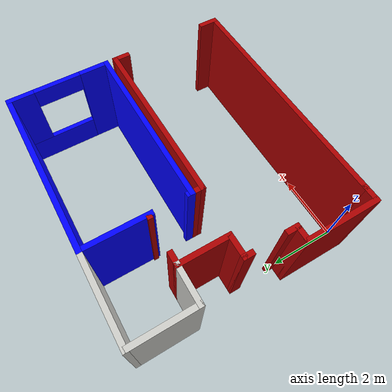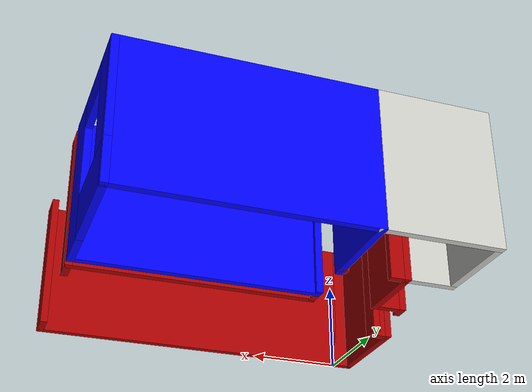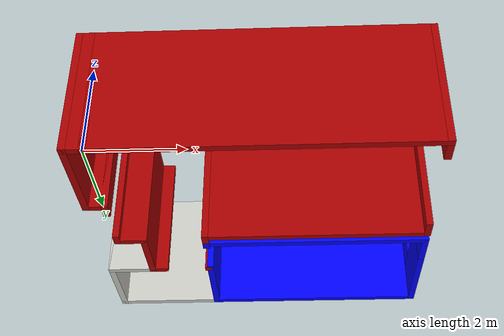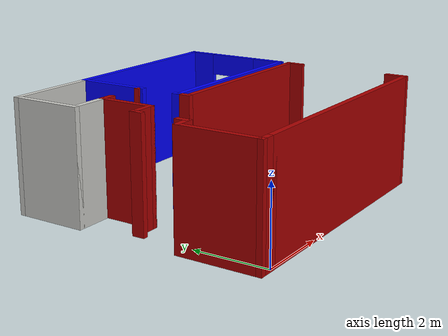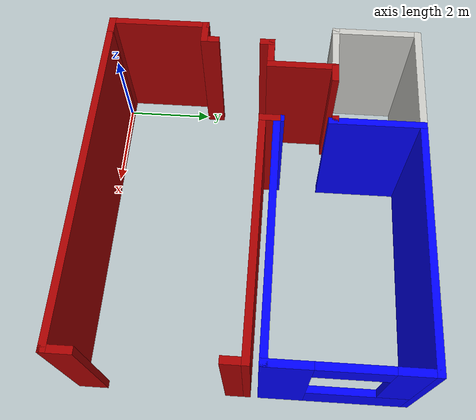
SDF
<?xml version='1.0'?>
<sdf version='1.6'>
  <model name='myhouse'>
    <pose frame=''>3.3 3.4 0 0 -0 0</pose>
    <link name='Wall_0'>
      <collision name='Wall_0_Collision'>
        <geometry>
          <box>
            <size>7.15 0.15 3</size>
          </box>
        </geometry>
        <pose frame=''>0 0 1.5 0 -0 0</pose>
      </collision>
      <visual name='Wall_0_Visual'>
        <pose frame=''>0 0 1.5 0 -0 0</pose>
        <geometry>
          <box>
            <size>7.15 0.15 3</size>
          </box>
        </geometry>
        <material>
          <script>
            <uri>file://media/materials/scripts/gazebo.material</uri>
            <name>Gazebo/Grey</name>
          </script>
          <ambient>0.666667 0 0 1</ambient>
        </material>
      </visual>
      <pose frame=''>0.2 -3.4 0 0 -0 0</pose>
    </link>
    <link name='Wall_10'>
      <pose frame=''>3.7 1.9 0 0 -0 1.5708</pose>
      <visual name='Wall_10_Visual_0'>
        <pose frame=''>-1.10421 0 1.5 0 -0 0</pose>
        <geometry>
          <box>
            <size>0.94158 0.15 3</size>
          </box>
        </geometry>
        <material>
          <script>
            <uri>file://media/materials/scripts/gazebo.material</uri>
            <name>Gazebo/Grey</name>
          </script>
          <ambient>0 0 1 1</ambient>
        </material>
      </visual>
      <collision name='Wall_10_Collision_0'>
        <geometry>
          <box>
            <size>0.94158 0.15 3</size>
          </box>
        </geometry>
        <pose frame=''>-1.10421 0 1.5 0 -0 0</pose>
      </collision>
      <visual name='Wall_10_Visual_1'>
        <pose frame=''>0.47079 0 0.45 0 -0 0</pose>
        <geometry>
          <box>
            <size>2.20842 0.15 0.9</size>
          </box>
        </geometry>
        <material>
          <script>
            <uri>file://media/materials/scripts/gazebo.material</uri>
            <name>Gazebo/Grey</name>
          </script>
          <ambient>0 0 1 1</ambient>
        </material>
      </visual>
      <collision name='Wall_10_Collision_1'>
        <geometry>
          <box>
            <size>2.20842 0.15 0.9</size>
          </box>
        </geometry>
        <pose frame=''>0.47079 0 0.45 0 -0 0</pose>
      </collision>
      <visual name='Wall_10_Visual_2'>
        <pose frame=''>1.17079 0 1.95 0 -0 0</pose>
        <geometry>
          <box>
            <size>0.80842 0.15 2.1</size>
          </box>
        </geometry>
        <material>
          <script>
            <uri>file://media/materials/scripts/gazebo.material</uri>
            <name>Gazebo/Grey</name>
          </script>
          <ambient>0 0 1 1</ambient>
        </material>
      </visual>
      <collision name='Wall_10_Collision_2'>
        <geometry>
          <box>
            <size>0.80842 0.15 2.1</size>
          </box>
        </geometry>
        <pose frame=''>1.17079 0 1.95 0 -0 0</pose>
      </collision>
      <visual name='Wall_10_Visual_3'>
        <pose frame=''>0.06658 0 2.7 0 -0 0</pose>
        <geometry>
          <box>
            <size>1.4 0.15 0.6</size>
          </box>
        </geometry>
        <material>
          <script>
            <uri>file://media/materials/scripts/gazebo.material</uri>
            <name>Gazebo/Grey</name>
          </script>
          <ambient>0 0 1 1</ambient>
        </material>
      </visual>
      <collision name='Wall_10_Collision_3'>
        <geometry>
          <box>
            <size>1.4 0.15 0.6</size>
          </box>
        </geometry>
        <pose frame=''>0.06658 0 2.7 0 -0 0</pose>
      </collision>
    </link>
    <link name='Wall_11'>
      <collision name='Wall_11_Collision'>
        <geometry>
          <box>
            <size>5.15 0.15 3</size>
          </box>
        </geometry>
        <pose frame=''>0 0 1.5 0 -0 0</pose>
      </collision>
      <visual name='Wall_11_Visual'>
        <pose frame=''>0 0 1.5 0 -0 0</pose>
        <geometry>
          <box>
            <size>5.15 0.15 3</size>
          </box>
        </geometry>
        <material>
          <script>
            <uri>file://media/materials/scripts/gazebo.material</uri>
            <name>Gazebo/Grey</name>
          </script>
          <ambient>0 0 1 1</ambient>
        </material>
      </visual>
      <pose frame=''>1.2 3.4 0 0 -0 3.14159</pose>
    </link>
    <link name='Wall_12'>
      <pose frame=''>-1.3 1.9 0 0 0 -1.5708</pose>
      <visual name='Wall_12_Visual_0'>
        <pose frame=''>-0.564587 0 1.5 0 -0 0</pose>
        <geometry>
          <box>
            <size>2.02082 0.15 3</size>
          </box>
        </geometry>
        <material>
          <script>
            <uri>file://media/materials/scripts/gazebo.material</uri>
            <name>Gazebo/Grey</name>
          </script>
          <ambient>0 0 1 1</ambient>
        </material>
      </visual>
      <collision name='Wall_12_Collision_0'>
        <geometry>
          <box>
            <size>2.02082 0.15 3</size>
          </box>
        </geometry>
        <pose frame=''>-0.564587 0 1.5 0 -0 0</pose>
      </collision>
      <visual name='Wall_12_Visual_1'>
        <pose frame=''>1.46041 0 1.5 0 -0 0</pose>
        <geometry>
          <box>
            <size>0.229175 0.15 3</size>
          </box>
        </geometry>
        <material>
          <script>
            <uri>file://media/materials/scripts/gazebo.material</uri>
            <name>Gazebo/Grey</name>
          </script>
          <ambient>0 0 1 1</ambient>
        </material>
      </visual>
      <collision name='Wall_12_Collision_1'>
        <geometry>
          <box>
            <size>0.229175 0.15 3</size>
          </box>
        </geometry>
        <pose frame=''>1.46041 0 1.5 0 -0 0</pose>
      </collision>
    </link>
    <link name='Wall_14'>
      <collision name='Wall_14_Collision'>
        <geometry>
          <box>
            <size>0.55 0.15 3</size>
          </box>
        </geometry>
        <pose frame=''>0 0 1.5 0 -0 0</pose>
      </collision>
      <visual name='Wall_14_Visual'>
        <pose frame=''>0 0 1.5 0 -0 0</pose>
        <geometry>
          <box>
            <size>0.55 0.15 3</size>
          </box>
        </geometry>
        <material>
          <script>
            <uri>file://media/materials/scripts/gazebo.material</uri>
            <name>Gazebo/Grey</name>
          </script>
          <ambient>0.666667 0 0 1</ambient>
        </material>
      </visual>
      <pose frame=''>-3.5 -3.4 0 0 -0 3.14159</pose>
    </link>
    <link name='Wall_16'>
      <collision name='Wall_16_Collision'>
        <geometry>
          <box>
            <size>2.25 0.15 3</size>
          </box>
        </geometry>
        <pose frame=''>0 0 1.5 0 -0 0</pose>
      </collision>
      <visual name='Wall_16_Visual'>
        <pose frame=''>0 0 1.5 0 -0 0</pose>
        <geometry>
          <box>
            <size>2.25 0.15 3</size>
          </box>
        </geometry>
        <material>
          <script>
            <uri>file://media/materials/scripts/gazebo.material</uri>
            <name>Gazebo/Grey</name>
          </script>
          <ambient>0.666667 0 0 1</ambient>
        </material>
      </visual>
      <pose frame=''>-3.7 -2.35 0 0 -0 1.5708</pose>
    </link>
    <link name='Wall_18'>
      <collision name='Wall_18_Collision'>
        <geometry>
          <box>
            <size>0.55 0.15 3</size>
          </box>
        </geometry>
        <pose frame=''>0 0 1.5 0 -0 0</pose>
      </collision>
      <visual name='Wall_18_Visual'>
        <pose frame=''>0 0 1.5 0 -0 0</pose>
        <geometry>
          <box>
            <size>0.55 0.15 3</size>
          </box>
        </geometry>
        <material>
          <script>
            <uri>file://media/materials/scripts/gazebo.material</uri>
            <name>Gazebo/Grey</name>
          </script>
          <ambient>0.666667 0 0 1</ambient>
        </material>
      </visual>
      <pose frame=''>-3.5 -1.3 0 0 -0 0</pose>
    </link>
    <link name='Wall_22'>
      <pose frame=''>-3.3 -0.553 0 0 -0 1.5708</pose>
      <visual name='Wall_22_Visual_0'>
        <pose frame=''>-0.617692 0 1.5 0 -0 0</pose>
        <geometry>
          <box>
            <size>0.408615 0.15 3</size>
          </box>
        </geometry>
        <material>
          <script>
            <uri>file://media/materials/scripts/gazebo.material</uri>
            <name>Gazebo/Grey</name>
          </script>
          <ambient>0.666667 0 0 1</ambient>
        </material>
      </visual>
      <collision name='Wall_22_Collision_0'>
        <geometry>
          <box>
            <size>0.408615 0.15 3</size>
          </box>
        </geometry>
        <pose frame=''>-0.617692 0 1.5 0 -0 0</pose>
      </collision>
      <visual name='Wall_22_Visual_1'>
        <pose frame=''>0.654308 0 1.5 0 -0 0</pose>
        <geometry>
          <box>
            <size>0.335385 0.15 3</size>
          </box>
        </geometry>
        <material>
          <script>
            <uri>file://media/materials/scripts/gazebo.material</uri>
            <name>Gazebo/Grey</name>
          </script>
          <ambient>0.666667 0 0 1</ambient>
        </material>
      </visual>
      <collision name='Wall_22_Collision_1'>
        <geometry>
          <box>
            <size>0.335385 0.15 3</size>
          </box>
        </geometry>
        <pose frame=''>0.654308 0 1.5 0 -0 0</pose>
      </collision>
    </link>
    <link name='Wall_24'>
      <collision name='Wall_24_Collision'>
        <geometry>
          <box>
            <size>0.75 0.15 3</size>
          </box>
        </geometry>
        <pose frame=''>0 0 1.5 0 -0 0</pose>
      </collision>
      <visual name='Wall_24_Visual'>
        <pose frame=''>0 0 1.5 0 -0 0</pose>
        <geometry>
          <box>
            <size>0.75 0.15 3</size>
          </box>
        </geometry>
        <material>
          <script>
            <uri>file://media/materials/scripts/gazebo.material</uri>
            <name>Gazebo/Grey</name>
          </script>
          <ambient>0.666667 0 0 1</ambient>
        </material>
      </visual>
      <pose frame=''>-3 0.194 0 0 -0 0</pose>
    </link>
    <link name='Wall_26'>
      <collision name='Wall_26_Collision'>
        <geometry>
          <box>
            <size>1.556 0.15 3</size>
          </box>
        </geometry>
        <pose frame=''>0 0 1.5 0 -0 0</pose>
      </collision>
      <visual name='Wall_26_Visual'>
        <pose frame=''>0 0 1.5 0 -0 0</pose>
        <geometry>
          <box>
            <size>1.556 0.15 3</size>
          </box>
        </geometry>
        <material>
          <script>
            <uri>file://media/materials/scripts/gazebo.material</uri>
            <name>Gazebo/Grey</name>
          </script>
          <ambient>0.666667 0 0 1</ambient>
        </material>
      </visual>
      <pose frame=''>-2.7 0.897 0 0 -0 1.5708</pose>
    </link>
    <link name='Wall_28'>
      <pose frame=''>-2.025 1.6 0 0 -0 0</pose>
      <visual name='Wall_28_Visual_0'>
        <pose frame=''>-0.526511 0 1.5 0 -0 0</pose>
        <geometry>
          <box>
            <size>0.446977 0.15 3</size>
          </box>
        </geometry>
        <material>
          <script>
            <uri>file://media/materials/scripts/gazebo.material</uri>
            <name>Gazebo/Grey</name>
          </script>
          <ambient>0.666667 0 0 1</ambient>
        </material>
      </visual>
      <collision name='Wall_28_Collision_0'>
        <geometry>
          <box>
            <size>0.446977 0.15 3</size>
          </box>
        </geometry>
        <pose frame=''>-0.526511 0 1.5 0 -0 0</pose>
      </collision>
      <visual name='Wall_28_Visual_1'>
        <pose frame=''>0.673489 0 1.5 0 -0 0</pose>
        <geometry>
          <box>
            <size>0.153023 0.15 3</size>
          </box>
        </geometry>
        <material>
          <script>
            <uri>file://media/materials/scripts/gazebo.material</uri>
            <name>Gazebo/Grey</name>
          </script>
          <ambient>0.666667 0 0 1</ambient>
        </material>
      </visual>
      <collision name='Wall_28_Collision_1'>
        <geometry>
          <box>
            <size>0.153023 0.15 3</size>
          </box>
        </geometry>
        <pose frame=''>0.673489 0 1.5 0 -0 0</pose>
      </collision>
    </link>
    <link name='Wall_30'>
      <collision name='Wall_30_Collision'>
        <geometry>
          <box>
            <size>2.55 0.15 3</size>
          </box>
        </geometry>
        <pose frame=''>0 0 1.5 0 -0 0</pose>
      </collision>
      <visual name='Wall_30_Visual'>
        <pose frame=''>0 0 1.5 0 -0 0</pose>
        <geometry>
          <box>
            <size>2.55 0.15 3</size>
          </box>
        </geometry>
        <material>
          <script>
            <uri>file://media/materials/scripts/gazebo.material</uri>
            <name>Gazebo/CeilingTiled</name>
          </script>
          <ambient>1 1 1 1</ambient>
        </material>
      </visual>
      <pose frame=''>-2.5 3.4 0 0 -0 3.14159</pose>
    </link>
    <link name='Wall_31'>
      <collision name='Wall_31_Collision'>
        <geometry>
          <box>
            <size>1.95 0.15 3</size>
          </box>
        </geometry>
        <pose frame=''>0 0 1.5 0 -0 0</pose>
      </collision>
      <visual name='Wall_31_Visual'>
        <pose frame=''>0 0 1.5 0 -0 0</pose>
        <geometry>
          <box>
            <size>1.95 0.15 3</size>
          </box>
        </geometry>
        <material>
          <script>
            <uri>file://media/materials/scripts/gazebo.material</uri>
            <name>Gazebo/CeilingTiled</name>
          </script>
          <ambient>1 1 1 1</ambient>
        </material>
      </visual>
      <pose frame=''>-3.7 2.5 0 0 0 -1.5708</pose>
    </link>
    <link name='Wall_32'>
      <collision name='Wall_32_Collision'>
        <geometry>
          <box>
            <size>1.15 0.15 3</size>
          </box>
        </geometry>
        <pose frame=''>0 0 1.5 0 -0 0</pose>
      </collision>
      <visual name='Wall_32_Visual'>
        <pose frame=''>0 0 1.5 0 -0 0</pose>
        <geometry>
          <box>
            <size>1.15 0.15 3</size>
          </box>
        </geometry>
        <material>
          <script>
            <uri>file://media/materials/scripts/gazebo.material</uri>
            <name>Gazebo/CeilingTiled</name>
          </script>
          <ambient>1 1 1 1</ambient>
        </material>
      </visual>
      <pose frame=''>-3.2 1.6 0 0 -0 0</pose>
    </link>
    <link name='Wall_6'>
      <pose frame=''>3.7 -1.65 0 0 -0 1.5708</pose>
      <visual name='Wall_6_Visual_0'>
        <pose frame=''>-1.51516 0 1.5 0 -0 0</pose>
        <geometry>
          <box>
            <size>0.61969 0.15 3</size>
          </box>
        </geometry>
        <material>
          <script>
            <uri>file://media/materials/scripts/gazebo.material</uri>
            <name>Gazebo/Grey</name>
          </script>
          <ambient>0.666667 0 0 1</ambient>
        </material>
      </visual>
      <collision name='Wall_6_Collision_0'>
        <geometry>
          <box>
            <size>0.61969 0.15 3</size>
          </box>
        </geometry>
        <pose frame=''>-1.51516 0 1.5 0 -0 0</pose>
      </collision>
      <visual name='Wall_6_Visual_1'>
        <pose frame=''>1.55984 0 1.5 0 -0 0</pose>
        <geometry>
          <box>
            <size>0.53031 0.15 3</size>
          </box>
        </geometry>
        <material>
          <script>
            <uri>file://media/materials/scripts/gazebo.material</uri>
            <name>Gazebo/Grey</name>
          </script>
          <ambient>0.666667 0 0 1</ambient>
        </material>
      </visual>
      <collision name='Wall_6_Collision_1'>
        <geometry>
          <box>
            <size>0.53031 0.15 3</size>
          </box>
        </geometry>
        <pose frame=''>1.55984 0 1.5 0 -0 0</pose>
      </collision>
    </link>
    <link name='Wall_7'>
      <collision name='Wall_7_Collision'>
        <geometry>
          <box>
            <size>5.15 0.15 3</size>
          </box>
        </geometry>
        <pose frame=''>0 0 1.5 0 -0 0</pose>
      </collision>
      <visual name='Wall_7_Visual'>
        <pose frame=''>0 0 1.5 0 -0 0</pose>
        <geometry>
          <box>
            <size>5.15 0.15 3</size>
          </box>
        </geometry>
        <material>
          <script>
            <uri>file://media/materials/scripts/gazebo.material</uri>
            <name>Gazebo/Grey</name>
          </script>
          <ambient>0.666667 0 0 1</ambient>
        </material>
      </visual>
      <pose frame=''>1.2 0.1 0 0 -0 3.14159</pose>
    </link>
    <link name='Wall_8'>
      <collision name='Wall_8_Collision'>
        <geometry>
          <box>
            <size>0.45 0.15 3</size>
          </box>
        </geometry>
        <pose frame=''>0 0 1.5 0 -0 0</pose>
      </collision>
      <visual name='Wall_8_Visual'>
        <pose frame=''>0 0 1.5 0 -0 0</pose>
        <geometry>
          <box>
            <size>0.45 0.15 3</size>
          </box>
        </geometry>
        <material>
          <script>
            <uri>file://media/materials/scripts/gazebo.material</uri>
            <name>Gazebo/Grey</name>
          </script>
          <ambient>0.666667 0 0 1</ambient>
        </material>
      </visual>
      <pose frame=''>-1.3 0.25 0 0 -0 1.5708</pose>
    </link>
    <link name='Wall_9'>
      <collision name='Wall_9_Collision'>
        <geometry>
          <box>
            <size>5.15 0.15 3</size>
          </box>
        </geometry>
        <pose frame=''>0 0 1.5 0 -0 0</pose>
      </collision>
      <visual name='Wall_9_Visual'>
        <pose frame=''>0 0 1.5 0 -0 0</pose>
        <geometry>
          <box>
            <size>5.15 0.15 3</size>
          </box>
        </geometry>
        <material>
          <script>
            <uri>file://media/materials/scripts/gazebo.material</uri>
            <name>Gazebo/Grey</name>
          </script>
          <ambient>0 0 1 1</ambient>
        </material>
      </visual>
      <pose frame=''>1.2 0.4 0 0 -0 0</pose>
    </link>
    <static>1</static>
  </model>
</sdf>
